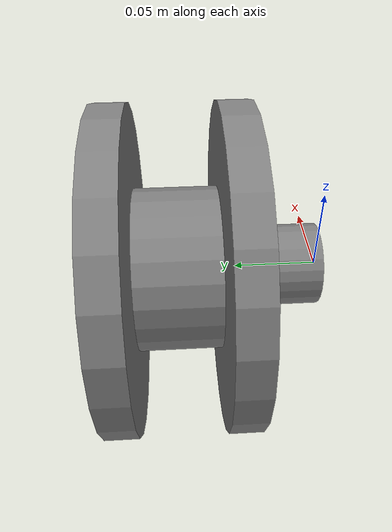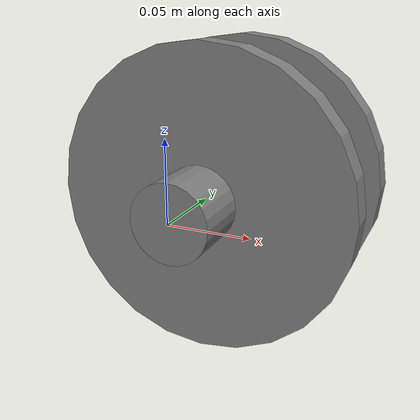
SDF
<?xml version='1.0'?>

<sdf version='1.6'>
	<model name='rueda'>
		<link name='rueda'>
			<collision name = "palo_collision" >
				<pose>0 0.02 0 1.5707963267948966 0 0</pose>
				<geometry>
					<cylinder>
						<radius>0.025</radius>
						<length>0.04</length>
					</cylinder>
				</geometry>
			</collision>
			<visual name = "palo_visual" >
				<pose>0 0.02 0 1.5707963267948966 0 0</pose>
				<geometry>
					<cylinder>
						<radius>0.025</radius>
						<length>0.04</length>
					</cylinder>
				</geometry>
				<material>
  					<ambient>0.5 0.5 0.5 1</ambient>
  					<emissive>0 0 0 1</emissive>
  					<diffuse>0.5 0.5 0.5 1</diffuse>
  					<specular>1 1 1 1</specular>
				</material>
			</visual>

			<collision name = "ext_1_collision" >
				<pose>0 0.05 0 1.5707963267948966 0 0</pose>
				<geometry>
					<cylinder>
						<radius>0.1</radius>
						<length>0.02</length>
					</cylinder>
				</geometry>
			</collision>
			<visual name = "ext_1_visual" >
				<pose>0 0.05 0 1.5707963267948966 0 0</pose>
				<geometry>
					<cylinder>
						<radius>0.1</radius>
						<length>0.02</length>
					</cylinder>
				</geometry>
				<material>
  					<ambient>0.5 0.5 0.5 1</ambient>
  					<emissive>0 0 0 1</emissive>
  					<diffuse>0.5 0.5 0.5 1</diffuse>
  					<specular>1 1 1 1</specular>
				</material>
			</visual>

			<collision name = "int_collision" >
				<pose>0 0.08499999999999999 0 1.5707963267948966 0 0</pose>
				<geometry>
					<cylinder>
						<radius>0.05</radius>
						<length>0.05</length>
					</cylinder>
				</geometry>
			</collision>
			<visual name = "int_visual" >
				<pose>0 0.08499999999999999 0 1.5707963267948966 0 0</pose>
				<geometry>
					<cylinder>
						<radius>0.05</radius>
						<length>0.05</length>
					</cylinder>
				</geometry>
				<material>
  					<ambient>0.5 0.5 0.5 1</ambient>
  					<emissive>0 0 0 1</emissive>
  					<diffuse>0.5 0.5 0.5 1</diffuse>
  					<specular>1 1 1 1</specular>
				</material>
			</visual>

			<collision name = "ext_2_collision" >
				<pose>0 0.12 0 1.5707963267948966 0 0</pose>
				<geometry>
					<cylinder>
						<radius>0.1</radius>
						<length>0.02</length>
					</cylinder>
				</geometry>
			</collision>
			<visual name = "ext_2_visual" >
				<pose>0 0.12 0 1.5707963267948966 0 0</pose>
				<geometry>
					<cylinder>
						<radius>0.1</radius>
						<length>0.02</length>
					</cylinder>
				</geometry>
				<material>
  					<ambient>0.5 0.5 0.5 1</ambient>
  					<emissive>0 0 0 1</emissive>
  					<diffuse>0.5 0.5 0.5 1</diffuse>
  					<specular>1 1 1 1</specular>
				</material>
			</visual>
		</link>
  	</model>
</sdf>
